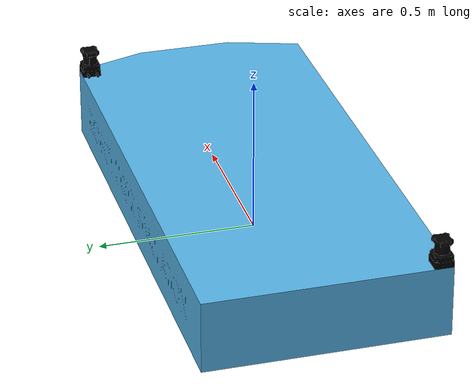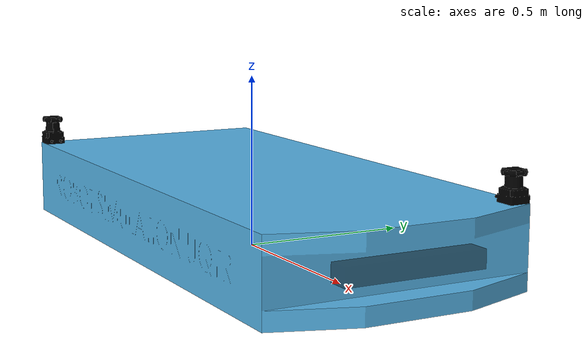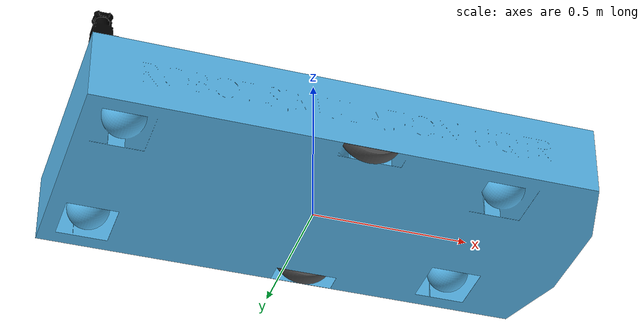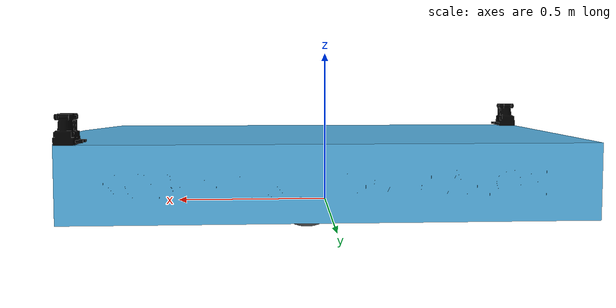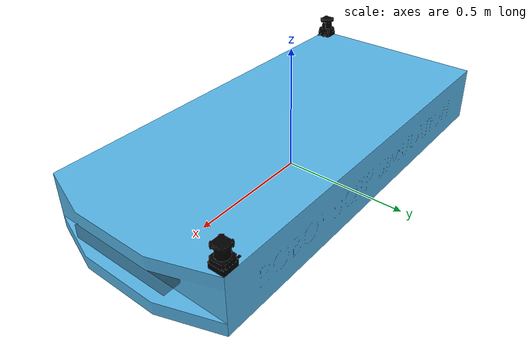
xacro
<?xml version="1.0" ?>

<robot name="Uqtr_Robot" xmlns:xacro="http://www.ros.org/wiki/xacro">

<!--Includes-->
<xacro:include filename="$(find uqtr_robot)/urdf/material.xacro" />
<xacro:include filename="$(find uqtr_robot)/urdf/robot.urdf" />
<xacro:include filename="$(find uqtr_robot)/urdf/properties.xacro" />

<!-- Friction pour les roues motrices-->
<xacro:Friction_roue_motrice wheel_name="roue_motrice_droite"/>
<xacro:Friction_roue_motrice wheel_name="roue_motrice_gauche"/>

<!-- Friction pour les roues caster-->
<xacro:Friction_roue_caster caster_name="chassis"/>

<!--Dummy-->

 <link name="base_link">
   </link>

   <joint name="dummy_joint" type="fixed">
     <origin
      xyz="0 0 0"
      rpy="0 0 0" />
     <parent link="base_link"/>
     <child link="chassis"/>
   </joint>

<!--Chassis-->
  <link
    name="chassis">
    <inertial>
      <mass
        value="49.497" />
     <inertia
        ixx="1.07"
        ixy="0"
        ixz="0.09"
        iyy="4.55"
        iyz="0"
        izz="5.30" />
    </inertial>
    <visual>
      <origin
        xyz="0 0 0"
        rpy="0 0 0" />
      <geometry>
        <mesh
          filename="package://uqtr_robot/meshes/chassis.dae" />
      </geometry>
    </visual>
    <collision>
      <origin
        xyz="0 0 0"
        rpy="0 0 0" />
      <geometry>
        <mesh
          filename="package://uqtr_robot/meshes/chassis.dae" />
      </geometry>
     <physics type="ode">
  <gravity xyz="0 0 -9.8"/>
  <ode>
    <solver type="quick" dt="0.001" iters="10" sor="1.3"/>
    <constraints cfm="0.0" erp="0.1" contact_max_correcting_vel="10.0" contact_surface_layer="0.001"/>
  </ode>
</physics>
    </collision>
  </link>

<!-- roue motrice droite -->

  <link
    name="roue_motrice_droite">
        <xacro:cylinder_inertia m="${masse_roue}" r="${rayon_roue}" h="${largeur_roue}"/>
    <visual>
      <origin
        xyz="0 0 0"
        rpy="0 0 0" />
      <geometry>
        <mesh
          filename="package://uqtr_robot/meshes/roue_motrice_droite.STL" />
      </geometry>
      <material
        name="">
        <color
          rgba="0.29804 0.29804 0.29804 1" />
      </material>
    </visual>
    <collision>
      <origin
        xyz="0 0 0"
        rpy="0 0 0" />
      <geometry>
        <mesh
          filename="package://uqtr_robot/meshes/roue_motrice_droite.STL" />
      </geometry>
    </collision>
  </link>

  <joint
    name="chassis_roue_motrice_droite"
    type="continuous">
    <origin
      xyz="0.074873 -0.34278 0.086706"
      rpy="0 0 0" />
    <parent
      link="chassis" />
    <child
      link="roue_motrice_droite" />
    <axis
      xyz="0 1 0" />
     <limit
      effort="${effort}"
      velocity="${velocity}" />
    <dynamics
      damping="${damping}"
      friction="${friction}" />
  </joint>

  <!-- roue motrice gauche -->

  <link
    name="roue_motrice_gauche">
        <xacro:cylinder_inertia m="${masse_roue}" r="${rayon_roue}" h="${largeur_roue}"/>
    <visual>
      <origin
        xyz="0 0 0"
        rpy="0 0 0" />
      <geometry>
        <mesh
          filename="package://uqtr_robot/meshes/roue_motrice_gauche.STL" />
      </geometry>
      <material
        name="">
        <color
          rgba="0.29804 0.29804 0.29804 1" />
      </material>
    </visual>
    <collision>
      <origin
        xyz="0 0 0"
        rpy="0 0 0" />
      <geometry>
        <mesh
          filename="package://uqtr_robot/meshes/roue_motrice_gauche.STL" />
      </geometry>
    </collision>
  </link>

  <joint
    name="chassis_roue_motrice_gauche"
    type="continuous">
    <origin
      xyz="0.074873 0.34278 0.086706"
      rpy="0 0 0" />
    <parent
      link="chassis" />
    <child
      link="roue_motrice_gauche" />
    <axis
      xyz="0 1 0" />
     <limit
      effort="${effort}"
      velocity="${velocity}" />
    <dynamics
      damping="${damping}"
      friction="${friction}" />
  </joint>

<!-- capteur laser avant -->

<link
    name="capteur_laser_avant">
    <inertial>
      <origin
        xyz="0.02471 6.5845E-10 -0.011912"
        rpy="0 0 0" />
      <mass
        value="0.32341" />
      <inertia
        ixx="1.9683E-05"
        ixy="6.844E-12"
        ixz="-0.00012644"
        iyy="0.00083192"
        iyz="1.0654E-12"
        izz="0.00081224" />
    </inertial>
    <visual>
      <origin
        xyz="0 0 0"
        rpy="0 0 0" />
      <geometry>
        <mesh
          filename="package://uqtr_robot/meshes/capteur_laser_avant.STL" />
      </geometry>
      <material
        name="">
        <color
          rgba="0 0 0 1" />
      </material>
    </visual>
    <collision>
      <origin
        xyz="0 0 0"
        rpy="0 0 0" />
      <geometry>
        <mesh
          filename="package://uqtr_robot/meshes/capteur_laser_avant.STL" />
      </geometry>
    </collision>
  </link>

  <joint
    name="chassis_capteur_laser_avant"
    type="fixed">
    <origin
      xyz="0.76419 0.351 0.28335"
      rpy="0 0 0" />
    <parent
      link="chassis" />
    <child
      link="capteur_laser_avant" />
    <axis
      xyz="0 0 0" />
  </joint>

<!-- capteur laser arriere  -->

<link
    name="capteur_laser_arriere">
    <inertial>
      <origin
        xyz="0.007429 -9.2927E-10 -0.016915"
        rpy="0 0 3.14" />
      <mass
        value="0.22916" />
      <inertia
        ixx="0"
        ixy="0"
        ixz="0"
        iyy="0"
        iyz="0"
        izz="0" />
    </inertial>
    <visual>
      <origin
        xyz="0 0 0"
        rpy="0 0 0" />
      <geometry>
        <mesh
          filename="package://uqtr_robot/meshes/capteur_laser_arriere.STL" />
      </geometry>
      <material
        name="">
        <color
          rgba="0 0 0 1" />
      </material>
    </visual>
    <collision>
      <origin
        xyz="0 0 0"
        rpy="0 0 0" />
      <geometry>
        <mesh
          filename="package://uqtr_robot/meshes/capteur_laser_arriere.STL" />
      </geometry>
    </collision>
  </link>

  <joint
    name="chassis_capteur_laser_arriere"
    type="fixed">
    <origin
      xyz="-0.76419 -0.351 0.28335"
      rpy="0 0 0" />
    <parent
      link="chassis" />
    <child
      link="capteur_laser_arriere" />
    <axis
      xyz="0 0 0" />
  </joint>

<!-- adis1647x_pcb ** pas configurer encore ** -->

  <link
    name="adis1647x_pcb">
    <inertial>
      <origin
        xyz="3.3961E-18 3.8417E-18 0.005"
        rpy="0 0 0" />
      <mass
        value="0.026795" />
      <inertia
        ixx="0"
        ixy="0"
        ixz="0"
        iyy="0"
        iyz="0"
        izz="0" />
    </inertial>
    <visual>
      <origin
        xyz="0 0 0"
        rpy="0 0 0" />
      <geometry>
        <mesh
          filename="package://uqtr_robot/meshes/adis1647x_pcb.STL" />
      </geometry>
      <material
        name="">
        <color
          rgba="0.89804 0.91765 0.92941 1" />
      </material>
    </visual>
    <collision>
      <origin
        xyz="0 0 0"
        rpy="0 0 0" />
      <geometry>
        <mesh
          filename="package://uqtr_robot/meshes/adis1647x_pcb.STL" />
      </geometry>
    </collision>
  </link>

  <joint
    name="chassis_adis1647x_pcb"
    type="fixed">
    <origin
      xyz="0 0 0.00122"
      rpy="0 0 0" />
    <parent
      link="chassis" />
    <child
      link="adis1647x_pcb" />
    <axis
      xyz="0 0 0" />
  </joint>

    <!-- Camera Sensor -->
  <link name="box">
    <visual>
	  <origin xyz="0.8 0 0.12" rpy="0.0 1.57 0.0"/>
      <geometry>
      <box size="0.05 0.4 0.1"/>
      </geometry>
      <material name="PVC">
		<color rgba="0 0 0 0.4"/>
      </material>
    </visual>
  </link>

  <joint name="box" type="fixed">
    <origin xyz="0 0 0" rpy="0 0 0"/>
    <child link="box"/>
    <parent link="chassis"/>
  </joint>
    <!-- Camera Sensor -->

</robot>

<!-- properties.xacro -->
<robot name="Uqtr_Robot" xmlns:xacro="http://www.ros.org/wiki/xacro">

  <!-- constants -->
<xacro:property name="deg_to_rad" value="0.017453"/>
<xacro:property name="PI" value="3.14"/>
<xacro:property name="friction" value="0.0"/>
<xacro:property name="damping" value="0.0"/>
<xacro:property name="effort" value="100"/>
<xacro:property name="velocity" value="100"/>

<!-- proprietes des roues motrices-->
<xacro:property name="rayon_roue" value="0.1016"/>
<xacro:property name="largeur_roue" value="0.0512533"/>
<xacro:property name="hauteur_roue" value="0.2032"/>
<xacro:property name="masse_roue" value="1.3118"/>

<!--Calcule d'inerti pour les roues motrices-->
<xacro:macro name="cylinder_inertia" params ="m r h">
    <inertial>
   <mass value="${m}"/>
   <inertia ixx="${m*(3*r*r+h*h)/12}"  ixy="0.0" ixz="0.0"
            iyy="${m*(3*r*r+h*h)/12}"  iyz= "0.0"
            izz="${m*r*r/2}"/>
    </inertial>
</xacro:macro>

<!--Friction pour les roues motrices-->
<xacro:macro name="Friction_roue_motrice" params= "wheel_name">
   <gazebo reference ="${wheel_name}">
     <mu1 value="449"/>
     <mu2 value="449"/>
     <kp  value="1000000.0" />
     <kd  value="1.0" />
   </gazebo>
 </xacro:macro>

 <!--Friction pour les roues casters-->
 <xacro:macro name="Friction_roue_caster" params="caster_name">
   <gazebo reference="${caster_name}">
   <mu1>0.0</mu1>
   <mu2>0.0</mu2>
  </gazebo>
 </xacro:macro>

 <!--Gravite pour le chassis-->
  <gazebo reference="chassis">
    <turnGravityOff>false</turnGravityOff>
  </gazebo>

</robot>
